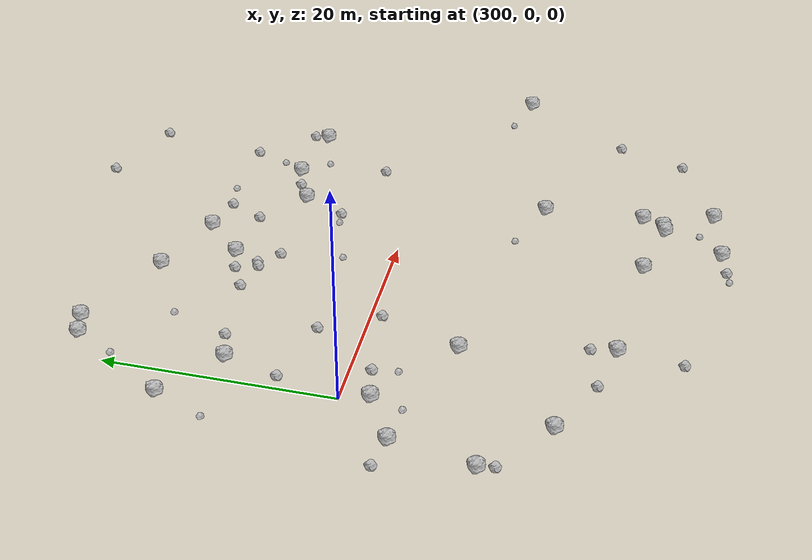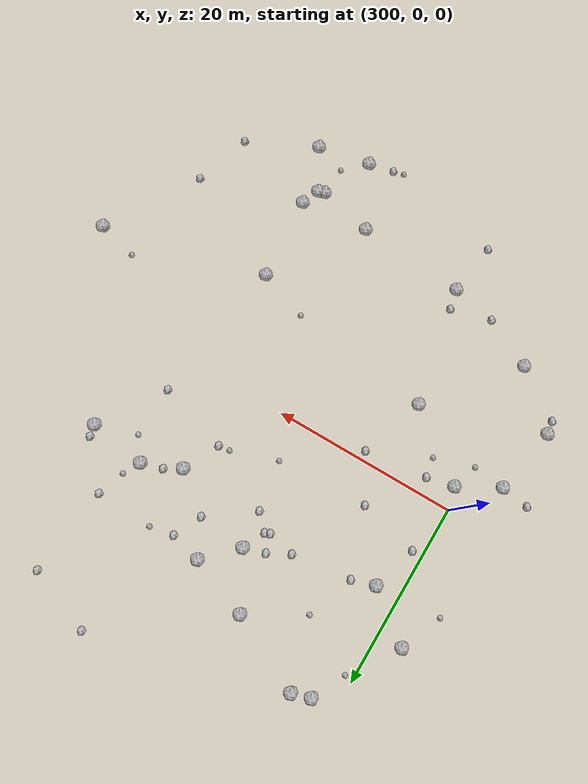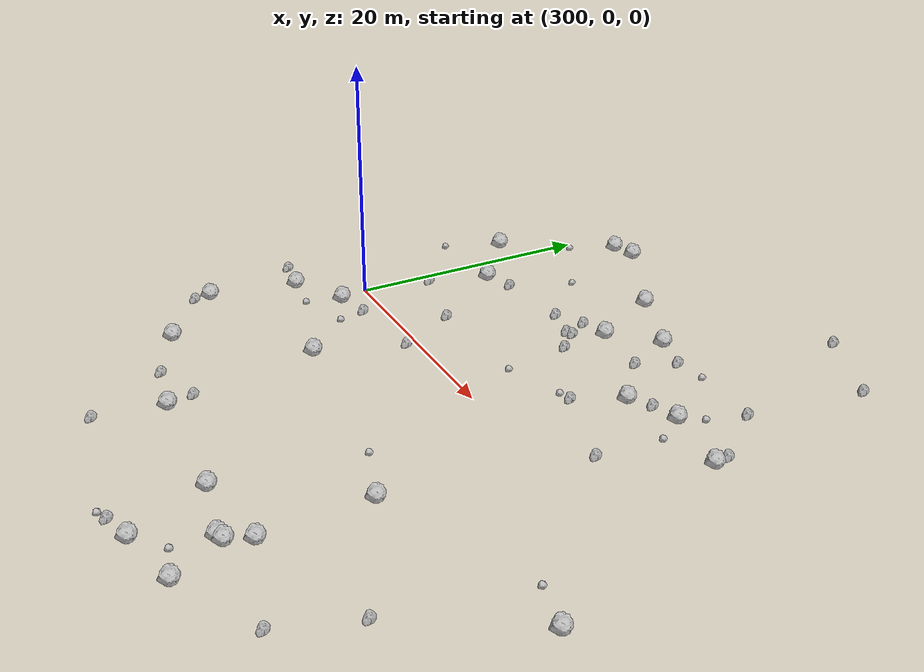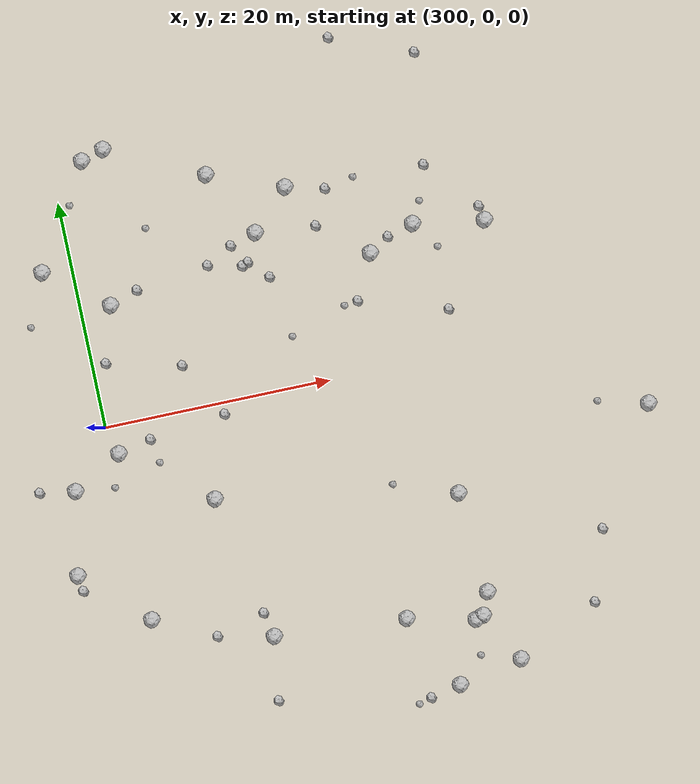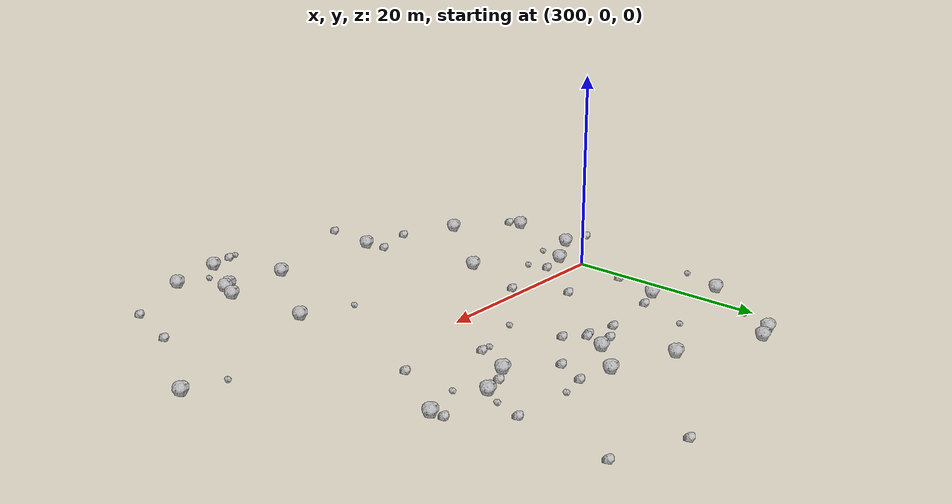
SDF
<sdf version="1.6">
 <world name="default">
  <include><uri>model://sun</uri></include>
  <model name="rock1_8_3">
   <include><uri>model://rock1</uri><pose>325.5905586949206 -28.16485949732939 0.5 0 0 0</pose></include>
  </model>
  <model name="rock1_8_4">
   <include><uri>model://rock1</uri><pose>336.0510076083303 10.890159672220435 0.5 0 0 0</pose></include>
  </model>
  <model name="rock1_8_5">
   <include><uri>model://rock1</uri><pose>319.65130585917524 17.274274461515148 0.5 0 0 0</pose></include>
  </model>
  <model name="rock1_8_6">
   <include><uri>model://rock1</uri><pose>300.56255634076956 -17.12053064703224 0.5 0 0 0</pose></include>
  </model>
  <model name="rock1_8_7">
   <include><uri>model://rock1</uri><pose>316.30126186168474 13.921203672426365 0.5 0 0 0</pose></include>
  </model>
  <model name="rock1_8_8">
   <include><uri>model://rock1</uri><pose>328.8996423387662 -11.887534907995267 0.5 0 0 0</pose></include>
  </model>
  <model name="rock1_8_9">
   <include><uri>model://rock1</uri><pose>297.43767056165933 14.354270457443448 0.5 0 0 0</pose></include>
  </model>
  <model name="rock1_8_10">
   <include><uri>model://rock1</uri><pose>295.0688497425832 -12.074662614262401 0.5 0 0 0</pose></include>
  </model>
  <model name="rock1_8_11">
   <include><uri>model://rock1</uri><pose>328.7780084589587 -22.70006315913151 0.5 0 0 0</pose></include>
  </model>
  <model name="rock1_8_12">
   <include><uri>model://rock1</uri><pose>346.68274771935 -7.673396948004921 0.5 0 0 0</pose></include>
  </model>
  <model name="rock1_8_13">
   <include><uri>model://rock1</uri><pose>296.3873680878451 -4.862635715724405 0.5 0 0 0</pose></include>
  </model>
  <model name="rock1_8_14">
   <include><uri>model://rock1</uri><pose>329.578022354997 -20.7807845963737 0.5 0 0 0</pose></include>
  </model>
  <model name="rock1_8_15">
   <include><uri>model://rock1</uri><pose>331.2076809493896 -27.076691121106215 0.5 0 0 0</pose></include>
  </model>
  <model name="rock1_8_16">
   <include><uri>model://rock1</uri><pose>325.73227068141887 10.115136719839896 0.5 0 0 0</pose></include>
  </model>
  <model name="rock1_8_17">
   <include><uri>model://rock1</uri><pose>300.74020276287393 -2.4314523316804575 0.5 0 0 0</pose></include>
  </model>
  <model name="rock1_8_18">
   <include><uri>model://rock1</uri><pose>329.8578100974272 11.859756447130557 0.5 0 0 0</pose></include>
  </model>
  <model name="rock1_8_19">
   <include><uri>model://rock1</uri><pose>313.1347677458676 19.75493024706853 0.5 0 0 0</pose></include>
  </model>
  <model name="rock1_8_20">
   <include><uri>model://rock1</uri><pose>308.09373330616353 -8.01383041669224 0.5 0 0 0</pose></include>
  </model>
  <model name="rock1_8_21">
   <include><uri>model://rock1</uri><pose>322.2410295576462 -21.600197526295087 0.5 0 0 0</pose></include>
  </model>
  <model name="rock1_8_22">
   <include><uri>model://rock1</uri><pose>310.6659299300491 -20.7257867880233 0.5 0 0 0</pose></include>
  </model>
  <model name="rock1_8_23">
   <include><uri>model://rock1</uri><pose>328.1024136607797 -22.91564360276555 0.5 0 0 0</pose></include>
  </model>
  <model name="rock1_8_24">
   <include><uri>model://rock1</uri><pose>304.83065239356773 23.77382183972054 0.5 0 0 0</pose></include>
  </model>
  <model name="rock1_8_25">
   <include><uri>model://rock1</uri><pose>302.6893868032964 10.336717112239711 0.5 0 0 0</pose></include>
  </model>
  <model name="rock1_8_26">
   <include><uri>model://rock1</uri><pose>302.8088939485643 23.156534661357142 0.5 0 0 0</pose></include>
  </model>
  <model name="rock2_8_0">
   <include><uri>model://rock2</uri><pose>331.40111293097226 3.935567838851455 0.3 0 0 0</pose></include>
  </model>
  <model name="rock2_8_1">
   <include><uri>model://rock2</uri><pose>307.6787756793601 3.924500463932624 0.3 0 0 0</pose></include>
  </model>
  <model name="rock2_8_2">
   <include><uri>model://rock2</uri><pose>310.4127255856175 -0.9689695529215214 0.3 0 0 0</pose></include>
  </model>
  <model name="rock2_8_3">
   <include><uri>model://rock2</uri><pose>313.9560347817257 13.251930468346515 0.3 0 0 0</pose></include>
  </model>
  <model name="rock2_8_4">
   <include><uri>model://rock2</uri><pose>310.1672973487134 -18.579368818932828 0.3 0 0 0</pose></include>
  </model>
  <model name="rock2_8_5">
   <include><uri>model://rock2</uri><pose>301.205699695603 5.4778440918288 0.3 0 0 0</pose></include>
  </model>
  <model name="rock2_8_6">
   <include><uri>model://rock2</uri><pose>295.233363769215 -13.48007444970656 0.3 0 0 0</pose></include>
  </model>
  <model name="rock2_8_7">
   <include><uri>model://rock2</uri><pose>326.0206068603843 29.280925642112308 0.3 0 0 0</pose></include>
  </model>
  <model name="rock2_8_8">
   <include><uri>model://rock2</uri><pose>293.26436102755497 -4.367791139390459 0.3 0 0 0</pose></include>
  </model>
  <model name="rock2_8_9">
   <include><uri>model://rock2</uri><pose>315.12382670050727 11.54623676202629 0.3 0 0 0</pose></include>
  </model>
  <model name="rock2_8_10">
   <include><uri>model://rock2</uri><pose>314.5775250512754 11.315610870605674 0.3 0 0 0</pose></include>
  </model>
  <model name="rock2_8_11">
   <include><uri>model://rock2</uri><pose>323.7935276361723 6.271033102451312 0.3 0 0 0</pose></include>
  </model>
  <model name="rock2_8_12">
   <include><uri>model://rock2</uri><pose>321.55780018476486 13.427181170705545 0.3 0 0 0</pose></include>
  </model>
  <model name="rock2_8_13">
   <include><uri>model://rock2</uri><pose>305.1672734213052 11.162698151547225 0.3 0 0 0</pose></include>
  </model>
  <model name="rock2_8_14">
   <include><uri>model://rock2</uri><pose>311.6297145980076 11.993496150431149 0.3 0 0 0</pose></include>
  </model>
  <model name="rock2_8_15">
   <include><uri>model://rock2</uri><pose>340.498423446567 -17.519575729561748 0.3 0 0 0</pose></include>
  </model>
  <model name="rock2_8_16">
   <include><uri>model://rock2</uri><pose>335.8017879760745 12.177437006120115 0.3 0 0 0</pose></include>
  </model>
  <model name="rock2_8_17">
   <include><uri>model://rock2</uri><pose>323.0073088417851 16.451580200764937 0.3 0 0 0</pose></include>
  </model>
  <model name="rock2_8_18">
   <include><uri>model://rock2</uri><pose>333.09803530614533 26.48340558285777 0.3 0 0 0</pose></include>
  </model>
  <model name="rock2_8_19">
   <include><uri>model://rock2</uri><pose>331.8468914512491 16.716096514406054 0.3 0 0 0</pose></include>
  </model>
  <model name="rock2_8_20">
   <include><uri>model://rock2</uri><pose>338.5139806066963 -23.59896070361716 0.3 0 0 0</pose></include>
  </model>
  <model name="rock2_8_21">
   <include><uri>model://rock2</uri><pose>309.87508471195883 -26.289773086348426 0.3 0 0 0</pose></include>
  </model>
  <model name="rock2_8_22">
   <include><uri>model://rock2</uri><pose>303.6444567819765 -1.7896214642865615 0.3 0 0 0</pose></include>
  </model>
  <model name="rock2_8_23">
   <include><uri>model://rock2</uri><pose>322.89260847436293 -28.783503559693504 0.3 0 0 0</pose></include>
  </model>
  <model name="rock2_8_24">
   <include><uri>model://rock2</uri><pose>316.7117409317566 9.900136785186945 0.3 0 0 0</pose></include>
  </model>
  <model name="rock2_8_25">
   <include><uri>model://rock2</uri><pose>305.83376362560364 -19.74004272658116 0.3 0 0 0</pose></include>
  </model>
  <model name="rock2_8_26">
   <include><uri>model://rock2</uri><pose>327.50367567743973 11.210246497082174 0.3 0 0 0</pose></include>
  </model>
  <model name="rock3_8_0">
   <include><uri>model://rock3</uri><pose>323.43610945965344 -10.00841695040404 0.2 0 0 0</pose></include>
  </model>
  <model name="rock3_8_1">
   <include><uri>model://rock3</uri><pose>330.81602016523294 13.70101902091519 0.2 0 0 0</pose></include>
  </model>
  <model name="rock3_8_2">
   <include><uri>model://rock3</uri><pose>325.58643896711953 16.930961798998034 0.2 0 0 0</pose></include>
  </model>
  <model name="rock3_8_3">
   <include><uri>model://rock3</uri><pose>304.00520866979554 -3.950355060697703 0.2 0 0 0</pose></include>
  </model>
  <model name="rock3_8_4">
   <include><uri>model://rock3</uri><pose>342.3579552158852 -6.586979065131576 0.2 0 0 0</pose></include>
  </model>
  <model name="rock3_8_5">
   <include><uri>model://rock3</uri><pose>299.7540441101365 -5.287105977624119 0.2 0 0 0</pose></include>
  </model>
  <model name="rock3_8_6">
   <include><uri>model://rock3</uri><pose>322.5550353819541 6.085873594069874 0.2 0 0 0</pose></include>
  </model>
  <model name="rock3_8_7">
   <include><uri>model://rock3</uri><pose>331.5611229530762 9.471260013278503 0.2 0 0 0</pose></include>
  </model>
  <model name="rock3_8_8">
   <include><uri>model://rock3</uri><pose>321.7527843666122 -29.13930271078027 0.2 0 0 0</pose></include>
  </model>
  <model name="rock3_8_9">
   <include><uri>model://rock3</uri><pose>327.85838549354725 -26.09112293210275 0.2 0 0 0</pose></include>
  </model>
  <model name="rock3_8_10">
   <include><uri>model://rock3</uri><pose>295.45312537701784 9.85649855621 0.2 0 0 0</pose></include>
  </model>
  <model name="rock3_8_11">
   <include><uri>model://rock3</uri><pose>300.92682076364656 19.58169698607199 0.2 0 0 0</pose></include>
  </model>
  <model name="rock3_8_12">
   <include><uri>model://rock3</uri><pose>317.56540363973215 4.40143245588893 0.2 0 0 0</pose></include>
  </model>
  <model name="rock3_8_13">
   <include><uri>model://rock3</uri><pose>306.9852856156682 16.264749192425185 0.2 0 0 0</pose></include>
  </model>
 </world>
</sdf>
